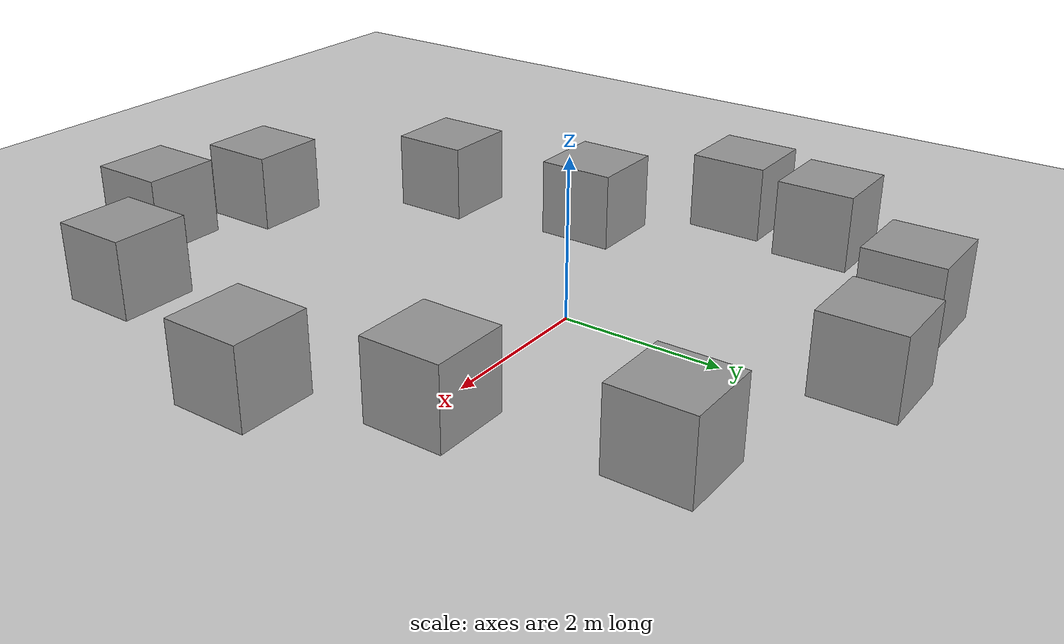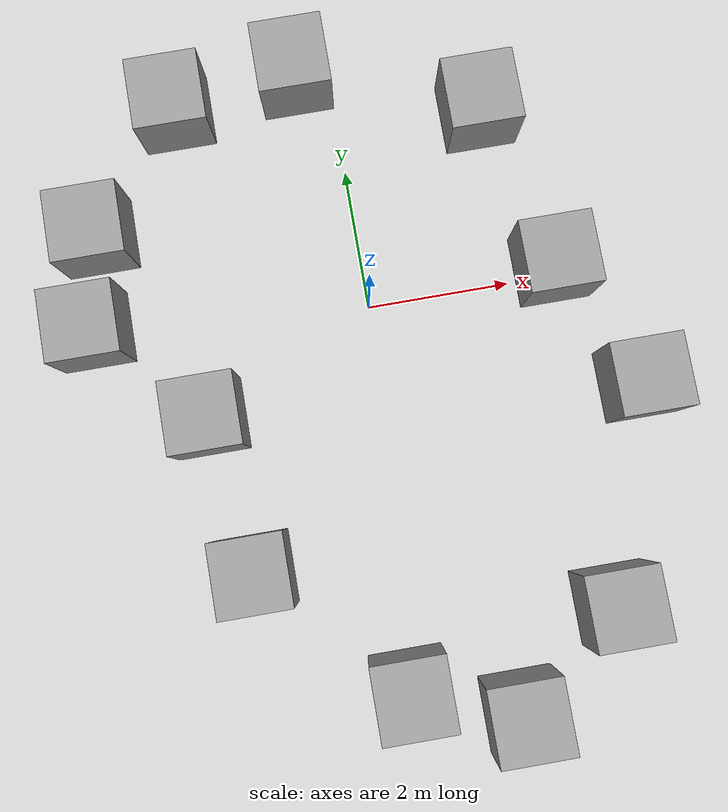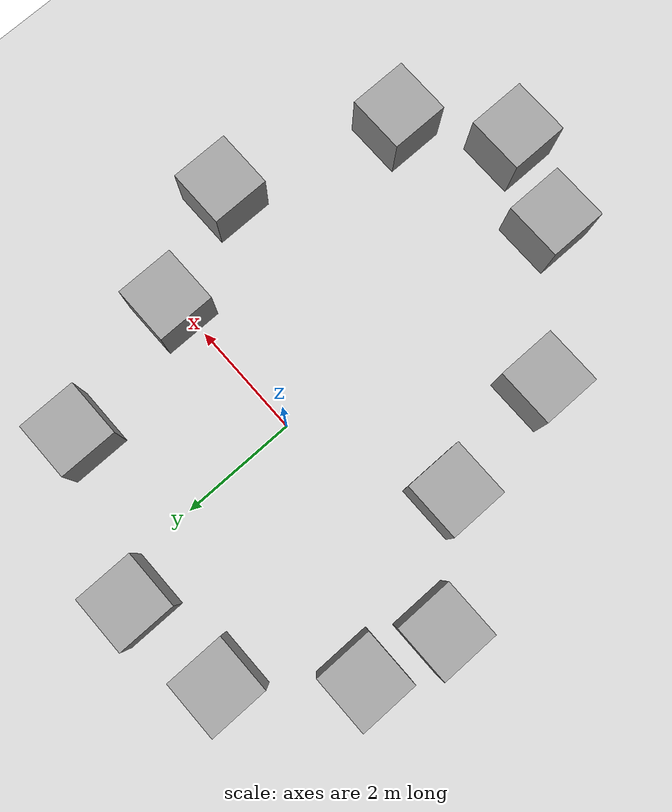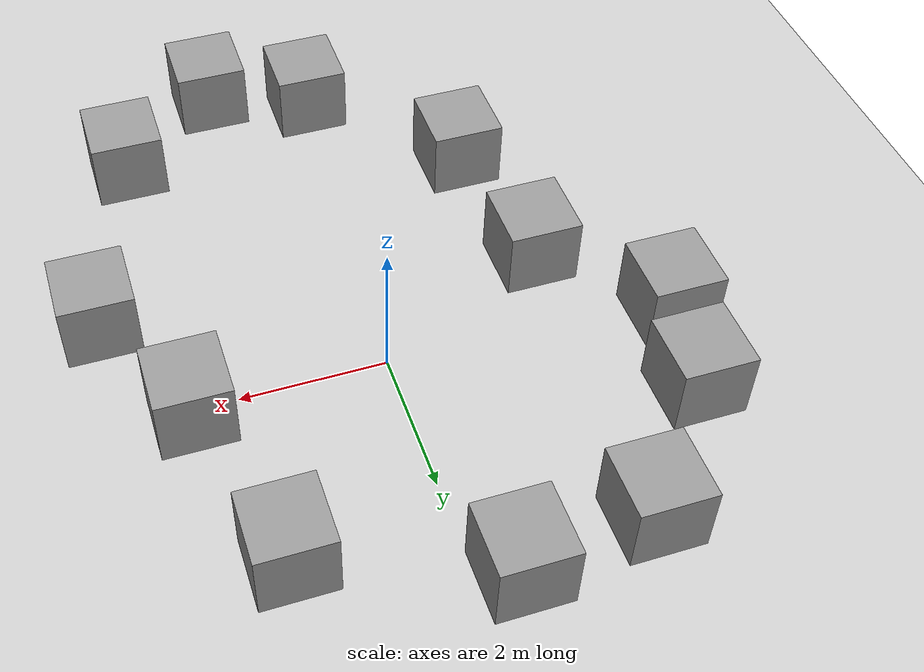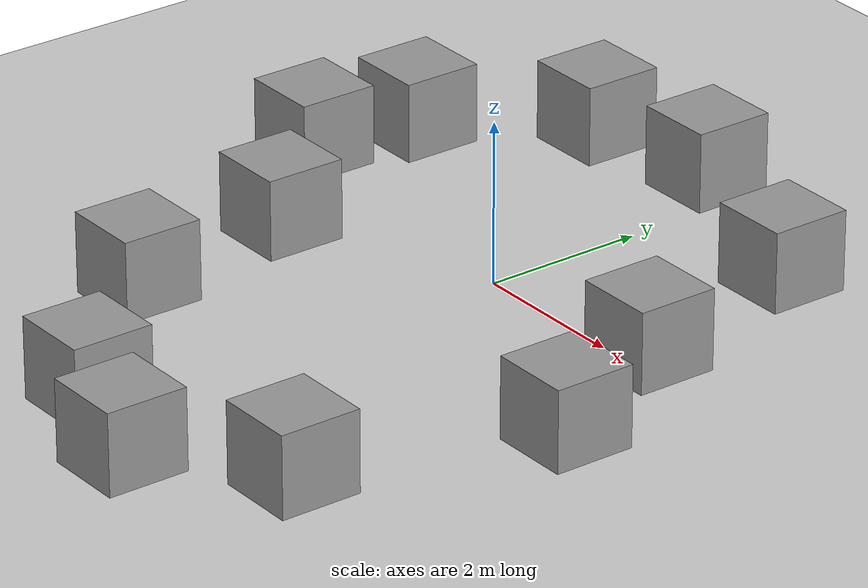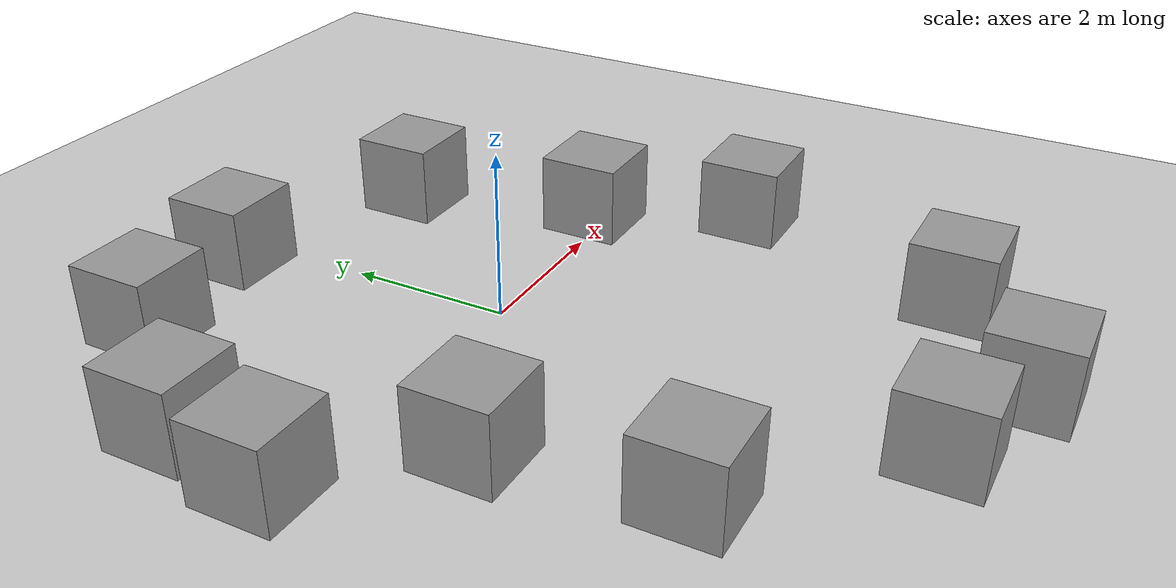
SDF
<sdf version="1.6">
 <world name="default">
  <light name="sun" type="directional">
   <pose>0 0 10 0 -0 0</pose>
   <diffuse>0.8 0.8 0.8 1</diffuse>
   <specular>0.2 0.2 0.2 1</specular>
   <attenuation>
    <range>1000</range>
    <constant>0.9</constant>
    <linear>0.01</linear>
    <quadratic>0.001</quadratic>
   </attenuation>
   <direction>-0.5 0.1 -0.9</direction>
  </light>
  <model name="ground_plane">
   <static>1</static>
   <link name="link">
    <collision name="collision">
     <geometry><plane><normal>0 0 1</normal><size>100 100</size></plane></geometry>
     <surface>
      <contact><collide_bitmask>65535</collide_bitmask></contact>
      <friction><ode><mu>100</mu><mu2>50</mu2></ode></friction>
     </surface>
    </collision>
    <visual name="visual">
     <cast_shadows>0</cast_shadows>
     <geometry><plane><normal>0 0 1</normal><size>100 100</size></plane></geometry>
     <material>
      <script><uri>file://media/materials/scripts/gazebo.material</uri><name>Gazebo/Grey</name></script>
     </material>
    </visual>
   </link>
  </model>
  <gravity>0 0 -9.8</gravity>
  <magnetic_field>6e-06 2.3e-05 -4.2e-05</magnetic_field>
  <atmosphere type="adiabatic"/>
  <physics name="default_physics" default="0" type="ode">
   <max_step_size>0.001</max_step_size>
   <real_time_factor>1</real_time_factor>
   <real_time_update_rate>1000</real_time_update_rate>
  </physics>
  <scene><ambient>0.4 0.4 0.4 1</ambient><background>0.7 0.7 0.7 1</background><shadows>1</shadows></scene>
  <audio><device>default</device></audio>
  <spherical_coordinates>
   <surface_model>EARTH_WGS84</surface_model>
   <latitude_deg>0</latitude_deg>
   <longitude_deg>0</longitude_deg>
   <elevation>0</elevation>
   <heading_deg>0</heading_deg>
  </spherical_coordinates>
  <model name="unit_box">
   <pose>3.4879 -1.69834 0.499995 -1e-05 -0 -0</pose>
   <link name="link">
    <inertial>
     <mass>1</mass>
     <inertia>
      <ixx>0.166667</ixx>
      <ixy>0</ixy>
      <ixz>0</ixz>
      <iyy>0.166667</iyy>
      <iyz>0</iyz>
      <izz>0.166667</izz>
     </inertia>
    </inertial>
    <collision name="collision"><geometry><box><size>1 1 1</size></box></geometry></collision>
    <visual name="visual">
     <geometry><box><size>1 1 1</size></box></geometry>
     <material>
      <script><name>Gazebo/Grey</name><uri>file://media/materials/scripts/gazebo.material</uri></script>
     </material>
    </visual>
   </link>
  </model>
  <model name="unit_box_clone">
   <pose>2.62175 0.12761 0.499995 0 -1e-05 0</pose>
   <link name="link">
    <inertial>
     <mass>1</mass>
     <inertia>
      <ixx>0.166667</ixx>
      <ixy>0</ixy>
      <ixz>0</ixz>
      <iyy>0.166667</iyy>
      <iyz>0</iyz>
      <izz>0.166667</izz>
     </inertia>
    </inertial>
    <collision name="collision"><geometry><box><size>1 1 1</size></box></geometry></collision>
    <visual name="visual">
     <geometry><box><size>1 1 1</size></box></geometry>
     <material>
      <script><name>Gazebo/Grey</name><uri>file://media/materials/scripts/gazebo.material</uri></script>
     </material>
    </visual>
   </link>
  </model>
  <model name="unit_box_clone_0">
   <pose>2 2.53559 0.499995 1e-05 -0 0</pose>
   <link name="link">
    <inertial>
     <mass>1</mass>
     <inertia>
      <ixx>0.166667</ixx>
      <ixy>0</ixy>
      <ixz>0</ixz>
      <iyy>0.166667</iyy>
      <iyz>0</iyz>
      <izz>0.166667</izz>
     </inertia>
    </inertial>
    <collision name="collision"><geometry><box><size>1 1 1</size></box></geometry></collision>
    <visual name="visual">
     <geometry><box><size>1 1 1</size></box></geometry>
     <material>
      <script><name>Gazebo/Grey</name><uri>file://media/materials/scripts/gazebo.material</uri></script>
     </material>
    </visual>
   </link>
  </model>
  <model name="unit_box_clone_1">
   <pose>-0.501161 3.49161 0.499995 0 -1e-05 0</pose>
   <link name="link">
    <inertial>
     <mass>1</mass>
     <inertia>
      <ixx>0.166667</ixx>
      <ixy>0</ixy>
      <ixz>0</ixz>
      <iyy>0.166667</iyy>
      <iyz>0</iyz>
      <izz>0.166667</izz>
     </inertia>
    </inertial>
    <collision name="collision"><geometry><box><size>1 1 1</size></box></geometry></collision>
    <visual name="visual">
     <geometry><box><size>1 1 1</size></box></geometry>
     <material>
      <script><name>Gazebo/Grey</name><uri>file://media/materials/scripts/gazebo.material</uri></script>
     </material>
    </visual>
   </link>
  </model>
  <model name="unit_box_clone_2">
   <pose>-2.26278 3.25958 0.499995 1e-05 -0 0</pose>
   <link name="link">
    <inertial>
     <mass>1</mass>
     <inertia>
      <ixx>0.166667</ixx>
      <ixy>0</ixy>
      <ixz>0</ixz>
      <iyy>0.166667</iyy>
      <iyz>0</iyz>
      <izz>0.166667</izz>
     </inertia>
    </inertial>
    <collision name="collision"><geometry><box><size>1 1 1</size></box></geometry></collision>
    <visual name="visual">
     <geometry><box><size>1 1 1</size></box></geometry>
     <material>
      <script><name>Gazebo/Grey</name><uri>file://media/materials/scripts/gazebo.material</uri></script>
     </material>
    </visual>
   </link>
  </model>
  <model name="unit_box_clone_3">
   <pose>-3.61187 1.62172 0.499995 0 -1e-05 0</pose>
   <link name="link">
    <inertial>
     <mass>1</mass>
     <inertia>
      <ixx>0.166667</ixx>
      <ixy>0</ixy>
      <ixz>0</ixz>
      <iyy>0.166667</iyy>
      <iyz>0</iyz>
      <izz>0.166667</izz>
     </inertia>
    </inertial>
    <collision name="collision"><geometry><box><size>1 1 1</size></box></geometry></collision>
    <visual name="visual">
     <geometry><box><size>1 1 1</size></box></geometry>
     <material>
      <script><name>Gazebo/Grey</name><uri>file://media/materials/scripts/gazebo.material</uri></script>
     </material>
    </visual>
   </link>
  </model>
  <model name="unit_box_clone_4">
   <pose>-3.85731 0.292092 0.499995 1e-05 -0 0</pose>
   <link name="link">
    <inertial>
     <mass>1</mass>
     <inertia>
      <ixx>0.166667</ixx>
      <ixy>0</ixy>
      <ixz>0</ixz>
      <iyy>0.166667</iyy>
      <iyz>0</iyz>
      <izz>0.166667</izz>
     </inertia>
    </inertial>
    <collision name="collision"><geometry><box><size>1 1 1</size></box></geometry></collision>
    <visual name="visual">
     <geometry><box><size>1 1 1</size></box></geometry>
     <material>
      <script><name>Gazebo/Grey</name><uri>file://media/materials/scripts/gazebo.material</uri></script>
     </material>
    </visual>
   </link>
  </model>
  <model name="unit_box_clone_5">
   <pose>-2.45594 -1.188 0.499995 0 -1e-05 0</pose>
   <link name="link">
    <inertial>
     <mass>1</mass>
     <inertia>
      <ixx>0.166667</ixx>
      <ixy>0</ixy>
      <ixz>0</ixz>
      <iyy>0.166667</iyy>
      <iyz>0</iyz>
      <izz>0.166667</izz>
     </inertia>
    </inertial>
    <collision name="collision"><geometry><box><size>1 1 1</size></box></geometry></collision>
    <visual name="visual">
     <geometry><box><size>1 1 1</size></box></geometry>
     <material>
      <script><name>Gazebo/Grey</name><uri>file://media/materials/scripts/gazebo.material</uri></script>
     </material>
    </visual>
   </link>
  </model>
  <model name="unit_box_clone_6">
   <pose>-2.13742 -3.36998 0.499995 1e-05 -0 0</pose>
   <link name="link">
    <inertial>
     <mass>1</mass>
     <inertia>
      <ixx>0.166667</ixx>
      <ixy>0</ixy>
      <ixz>0</ixz>
      <iyy>0.166667</iyy>
      <iyz>0</iyz>
      <izz>0.166667</izz>
     </inertia>
    </inertial>
    <collision name="collision"><geometry><box><size>1 1 1</size></box></geometry></collision>
    <visual name="visual">
     <geometry><box><size>1 1 1</size></box></geometry>
     <material>
      <script><name>Gazebo/Grey</name><uri>file://media/materials/scripts/gazebo.material</uri></script>
     </material>
    </visual>
   </link>
  </model>
  <model name="unit_box_clone_7">
   <pose>-0.335185 -5.24331 0.499995 0 -1e-05 0</pose>
   <link name="link">
    <inertial>
     <mass>1</mass>
     <inertia>
      <ixx>0.166667</ixx>
      <ixy>0</ixy>
      <ixz>0</ixz>
      <iyy>0.166667</iyy>
      <iyz>0</iyz>
      <izz>0.166667</izz>
     </inertia>
    </inertial>
    <collision name="collision"><geometry><box><size>1 1 1</size></box></geometry></collision>
    <visual name="visual">
     <geometry><box><size>1 1 1</size></box></geometry>
     <material>
      <script><name>Gazebo/Grey</name><uri>file://media/materials/scripts/gazebo.material</uri></script>
     </material>
    </visual>
   </link>
  </model>
  <model name="unit_box_clone_8">
   <pose>1.07563 -5.76663 0.499995 1e-05 -0 0</pose>
   <link name="link">
    <inertial>
     <mass>1</mass>
     <inertia>
      <ixx>0.166667</ixx>
      <ixy>0</ixy>
      <ixz>0</ixz>
      <iyy>0.166667</iyy>
      <iyz>0</iyz>
      <izz>0.166667</izz>
     </inertia>
    </inertial>
    <collision name="collision"><geometry><box><size>1 1 1</size></box></geometry></collision>
    <visual name="visual">
     <geometry><box><size>1 1 1</size></box></geometry>
     <material>
      <script><name>Gazebo/Grey</name><uri>file://media/materials/scripts/gazebo.material</uri></script>
     </material>
    </visual>
   </link>
  </model>
  <model name="unit_box_clone_9">
   <pose>2.56159 -4.60102 0.499995 0 -1e-05 0</pose>
   <link name="link">
    <inertial>
     <mass>1</mass>
     <inertia>
      <ixx>0.166667</ixx>
      <ixy>0</ixy>
      <ixz>0</ixz>
      <iyy>0.166667</iyy>
      <iyz>0</iyz>
      <izz>0.166667</izz>
     </inertia>
    </inertial>
    <collision name="collision"><geometry><box><size>1 1 1</size></box></geometry></collision>
    <visual name="visual">
     <geometry><box><size>1 1 1</size></box></geometry>
     <material>
      <script><name>Gazebo/Grey</name><uri>file://media/materials/scripts/gazebo.material</uri></script>
     </material>
    </visual>
   </link>
  </model>
 </world>
</sdf>
